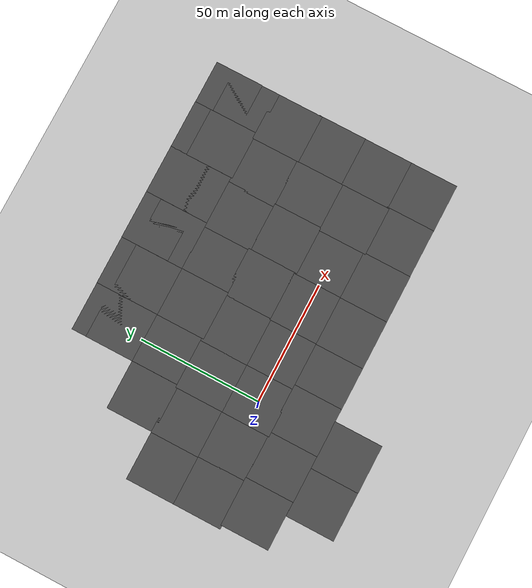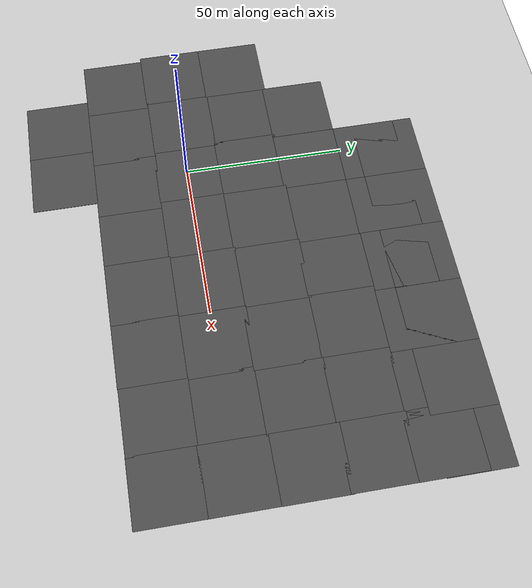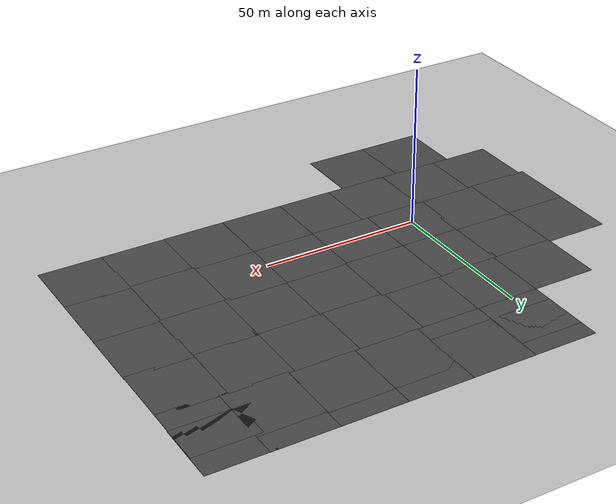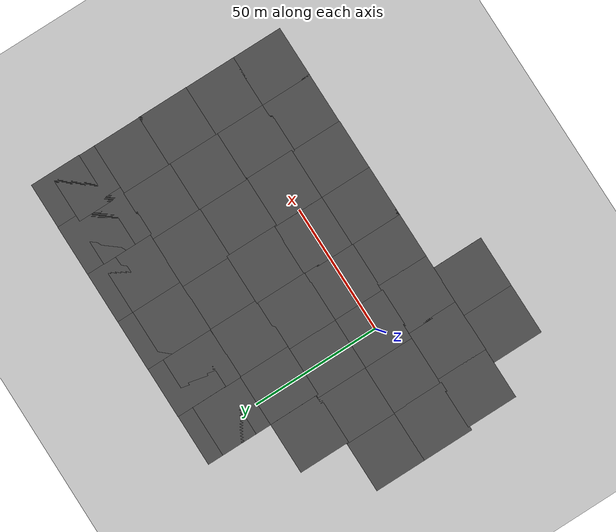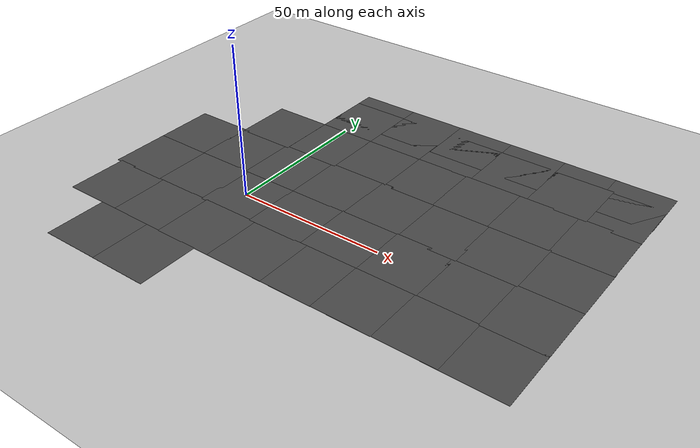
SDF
<sdf version="1.6">
 <world name="default">
  <light name="sun" type="directional">
   <pose>0 0 10 0 -0 0</pose>
   <diffuse>0.8 0.8 0.8 1</diffuse>
   <specular>0.1 0.1 0.1 1</specular>
   <attenuation>
    <range>1000</range>
    <constant>0.9</constant>
    <linear>0.01</linear>
    <quadratic>0.001</quadratic>
   </attenuation>
   <direction>-0.5 0.5 -1</direction>
  </light>
  <model name="ground_plane">
   <static>1</static>
   <link name="link">
    <collision name="collision">
     <geometry><plane><normal>0 0 1</normal><size>100 100</size></plane></geometry>
     <surface><friction><ode><mu>100</mu><mu2>50</mu2></ode></friction></surface>
    </collision>
    <visual name="visual">
     <cast_shadows>0</cast_shadows>
     <geometry><plane><normal>0 0 1</normal><size>100 100</size></plane></geometry>
     <material>
      <script><uri>file://media/materials/scripts/gazebo.material</uri><name>Gazebo/Grey</name></script>
     </material>
    </visual>
   </link>
  </model>
  <gravity>0 0 -9.8</gravity>
  <magnetic_field>6e-06 2.3e-05 -4.2e-05</magnetic_field>
  <atmosphere type="adiabatic"/>
  <physics name="default_physics" default="0" type="ode">
   <max_step_size>0.001</max_step_size>
   <real_time_factor>1</real_time_factor>
   <real_time_update_rate>1000</real_time_update_rate>
  </physics>
  <scene><ambient>0.4 0.4 0.4 1</ambient><background>0.7 0.7 0.7 1</background><shadows>1</shadows></scene>
  <spherical_coordinates>
   <surface_model>EARTH_WGS84</surface_model>
   <latitude_deg>0</latitude_deg>
   <longitude_deg>0</longitude_deg>
   <elevation>0</elevation>
   <heading_deg>0</heading_deg>
  </spherical_coordinates>
  <model name="asphalt_plane_4">
   <static>1</static>
   <link name="link">
    <collision name="collision"><geometry><box><size>20 20 0.1</size></box></geometry></collision>
    <visual name="visual">
     <cast_shadows>0</cast_shadows>
     <geometry><box><size>20 20 0.1</size></box></geometry>
     <material>
      <script>
       <uri>model://asphalt_plane/materials/scripts</uri>
       <uri>model://asphalt_plane/materials/textures</uri>
       <name>vrc/asphalt</name>
      </script>
     </material>
    </visual>
   </link>
   <pose>-38.464 20.3548 0 0 -0 0</pose>
  </model>
  <model name="asphalt_plane_5">
   <static>1</static>
   <link name="link">
    <collision name="collision"><geometry><box><size>20 20 0.1</size></box></geometry></collision>
    <visual name="visual">
     <cast_shadows>0</cast_shadows>
     <geometry><box><size>20 20 0.1</size></box></geometry>
     <material>
      <script>
       <uri>model://asphalt_plane/materials/scripts</uri>
       <uri>model://asphalt_plane/materials/textures</uri>
       <name>vrc/asphalt</name>
      </script>
     </material>
    </visual>
   </link>
   <pose>-18.8729 20.4275 0 0 -0 0</pose>
  </model>
  <model name="asphalt_plane_7">
   <static>1</static>
   <link name="link">
    <collision name="collision"><geometry><box><size>20 20 0.1</size></box></geometry></collision>
    <visual name="visual">
     <cast_shadows>0</cast_shadows>
     <geometry><box><size>20 20 0.1</size></box></geometry>
     <material>
      <script>
       <uri>model://asphalt_plane/materials/scripts</uri>
       <uri>model://asphalt_plane/materials/textures</uri>
       <name>vrc/asphalt</name>
      </script>
     </material>
    </visual>
   </link>
   <pose>20.1778 20.2326 0 0 -0 0</pose>
  </model>
  <model name="asphalt_plane_10">
   <static>1</static>
   <link name="link">
    <collision name="collision"><geometry><box><size>20 20 0.1</size></box></geometry></collision>
    <visual name="visual">
     <cast_shadows>0</cast_shadows>
     <geometry><box><size>20 20 0.1</size></box></geometry>
     <material>
      <script>
       <uri>model://asphalt_plane/materials/scripts</uri>
       <uri>model://asphalt_plane/materials/textures</uri>
       <name>vrc/asphalt</name>
      </script>
     </material>
    </visual>
   </link>
   <pose>19.9973 0.461553 0 0 -0 0</pose>
  </model>
  <model name="asphalt_plane_11">
   <static>1</static>
   <link name="link">
    <collision name="collision"><geometry><box><size>20 20 0.1</size></box></geometry></collision>
    <visual name="visual">
     <cast_shadows>0</cast_shadows>
     <geometry><box><size>20 20 0.1</size></box></geometry>
     <material>
      <script>
       <uri>model://asphalt_plane/materials/scripts</uri>
       <uri>model://asphalt_plane/materials/textures</uri>
       <name>vrc/asphalt</name>
      </script>
     </material>
    </visual>
   </link>
   <pose>0.257294 0.284104 0 0 -0 0</pose>
  </model>
  <model name="asphalt_plane_12">
   <static>1</static>
   <link name="link">
    <collision name="collision"><geometry><box><size>20 20 0.1</size></box></geometry></collision>
    <visual name="visual">
     <cast_shadows>0</cast_shadows>
     <geometry><box><size>20 20 0.1</size></box></geometry>
     <material>
      <script>
       <uri>model://asphalt_plane/materials/scripts</uri>
       <uri>model://asphalt_plane/materials/textures</uri>
       <name>vrc/asphalt</name>
      </script>
     </material>
    </visual>
   </link>
   <pose>-18.6747 0.719295 0 0 -0 0</pose>
  </model>
  <model name="asphalt_plane_13">
   <static>1</static>
   <link name="link">
    <collision name="collision"><geometry><box><size>20 20 0.1</size></box></geometry></collision>
    <visual name="visual">
     <cast_shadows>0</cast_shadows>
     <geometry><box><size>20 20 0.1</size></box></geometry>
     <material>
      <script>
       <uri>model://asphalt_plane/materials/scripts</uri>
       <uri>model://asphalt_plane/materials/textures</uri>
       <name>vrc/asphalt</name>
      </script>
     </material>
    </visual>
   </link>
   <pose>-38.4625 0.435225 0 0 -0 0</pose>
  </model>
  <model name="asphalt_plane_18">
   <static>1</static>
   <link name="link">
    <collision name="collision"><geometry><box><size>20 20 0.1</size></box></geometry></collision>
    <visual name="visual">
     <cast_shadows>0</cast_shadows>
     <geometry><box><size>20 20 0.1</size></box></geometry>
     <material>
      <script>
       <uri>model://asphalt_plane/materials/scripts</uri>
       <uri>model://asphalt_plane/materials/textures</uri>
       <name>vrc/asphalt</name>
      </script>
     </material>
    </visual>
   </link>
   <pose>39.4809 -19.2115 0 0 -0 0</pose>
  </model>
  <model name="asphalt_plane_21">
   <static>1</static>
   <link name="link">
    <collision name="collision"><geometry><box><size>20 20 0.1</size></box></geometry></collision>
    <visual name="visual">
     <cast_shadows>0</cast_shadows>
     <geometry><box><size>20 20 0.1</size></box></geometry>
     <material>
      <script>
       <uri>model://asphalt_plane/materials/scripts</uri>
       <uri>model://asphalt_plane/materials/textures</uri>
       <name>vrc/asphalt</name>
      </script>
     </material>
    </visual>
   </link>
   <pose>2.18116 -19.193 0 0 -0 0</pose>
  </model>
  <model name="asphalt_plane_22">
   <static>1</static>
   <link name="link">
    <collision name="collision"><geometry><box><size>20 20 0.1</size></box></geometry></collision>
    <visual name="visual">
     <cast_shadows>0</cast_shadows>
     <geometry><box><size>20 20 0.1</size></box></geometry>
     <material>
      <script>
       <uri>model://asphalt_plane/materials/scripts</uri>
       <uri>model://asphalt_plane/materials/textures</uri>
       <name>vrc/asphalt</name>
      </script>
     </material>
    </visual>
   </link>
   <pose>22.0547 -19.2194 0 0 -0 0</pose>
  </model>
  <model name="asphalt_plane_9_clone_0">
   <static>1</static>
   <link name="link">
    <collision name="collision"><geometry><box><size>20 20 0.1</size></box></geometry></collision>
    <visual name="visual">
     <cast_shadows>0</cast_shadows>
     <geometry><box><size>20 20 0.1</size></box></geometry>
     <material>
      <script>
       <uri>model://asphalt_plane/materials/scripts</uri>
       <uri>model://asphalt_plane/materials/textures</uri>
       <name>vrc/asphalt</name>
      </script>
     </material>
    </visual>
   </link>
   <pose>1.40042 39.4663 0 0 -0 0</pose>
  </model>
  <model name="asphalt_plane_9_clone_1">
   <static>1</static>
   <link name="link">
    <collision name="collision"><geometry><box><size>20 20 0.1</size></box></geometry></collision>
    <visual name="visual">
     <cast_shadows>0</cast_shadows>
     <geometry><box><size>20 20 0.1</size></box></geometry>
     <material>
      <script>
       <uri>model://asphalt_plane/materials/scripts</uri>
       <uri>model://asphalt_plane/materials/textures</uri>
       <name>vrc/asphalt</name>
      </script>
     </material>
    </visual>
   </link>
   <pose>21.2462 39.3939 0 0 -0 0</pose>
  </model>
  <model name="asphalt_plane_9_clone_2">
   <static>1</static>
   <link name="link">
    <collision name="collision"><geometry><box><size>20 20 0.1</size></box></geometry></collision>
    <visual name="visual">
     <cast_shadows>0</cast_shadows>
     <geometry><box><size>20 20 0.1</size></box></geometry>
     <material>
      <script>
       <uri>model://asphalt_plane/materials/scripts</uri>
       <uri>model://asphalt_plane/materials/textures</uri>
       <name>vrc/asphalt</name>
      </script>
     </material>
    </visual>
   </link>
   <pose>39.4027 39.4817 0 0 -0 0</pose>
  </model>
  <model name="asphalt_plane_16">
   <static>1</static>
   <link name="link">
    <collision name="collision"><geometry><box><size>20 20 0.1</size></box></geometry></collision>
    <visual name="visual">
     <cast_shadows>0</cast_shadows>
     <geometry><box><size>20 20 0.1</size></box></geometry>
     <material>
      <script>
       <uri>model://asphalt_plane/materials/scripts</uri>
       <uri>model://asphalt_plane/materials/textures</uri>
       <name>vrc/asphalt</name>
      </script>
     </material>
    </visual>
   </link>
   <pose>0.295027 20.223 0 0 -0 0</pose>
  </model>
  <model name="robocup_3d_field">
   <static>1</static>
   <link name="field">
    <pose>0 0 0.01 0 -0 0</pose>
    <collision name="collision">
     <geometry><plane><normal>0 0 1</normal><size>30 20</size></plane></geometry>
     <surface><friction><ode><mu>100</mu><mu2>50</mu2></ode></friction></surface>
    </collision>
    <visual name="base1">
     <pose>0 11 0.001 0 -0 0</pose>
     <cast_shadows>0</cast_shadows>
     <geometry><plane><normal>0 0 1</normal><size>34 2</size></plane></geometry>
     <material>
      <script>
       <uri>model://robocup_3Dsim_field/materials/scripts/</uri>
       <uri>model://robocup_3Dsim_field/materials/textures/</uri>
       <name>RoboCup/FieldBorder</name>
      </script>
     </material>
    </visual>
    <visual name="base2">
     <pose>0 -11 0.001 0 -0 0</pose>
     <cast_shadows>0</cast_shadows>
     <geometry><plane><normal>0 0 1</normal><size>34 2</size></plane></geometry>
     <material>
      <script>
       <uri>model://robocup_3Dsim_field/materials/scripts/</uri>
       <uri>model://robocup_3Dsim_field/materials/textures/</uri>
       <name>RoboCup/FieldBorder</name>
      </script>
     </material>
    </visual>
    <visual name="base3">
     <pose>16 0 0.001 0 -0 0</pose>
     <cast_shadows>0</cast_shadows>
     <geometry><plane><normal>0 0 1</normal><size>2 20</size></plane></geometry>
     <material>
      <script>
       <uri>model://robocup_3Dsim_field/materials/scripts/</uri>
       <uri>model://robocup_3Dsim_field/materials/textures/</uri>
       <name>RoboCup/FieldBorder</name>
      </script>
     </material>
    </visual>
    <visual name="base4">
     <pose>-16 0 0.001 0 -0 0</pose>
     <cast_shadows>0</cast_shadows>
     <geometry><plane><normal>0 0 1</normal><size>2 20</size></plane></geometry>
     <material>
      <script>
       <uri>model://robocup_3Dsim_field/materials/scripts/</uri>
       <uri>model://robocup_3Dsim_field/materials/textures/</uri>
       <name>RoboCup/FieldBorder</name>
      </script>
     </material>
    </visual>
    <visual name="carpet">
     <cast_shadows>0</cast_shadows>
     <geometry><plane><normal>0 0 1</normal><size>30 20</size></plane></geometry>
     <material>
      <script>
       <uri>model://robocup_3Dsim_field/materials/scripts/</uri>
       <uri>model://robocup_3Dsim_field/materials/textures/</uri>
       <name>RoboCup/Grass</name>
      </script>
     </material>
    </visual>
   </link>
   <pose>-12.9171 -26.9667 0 0 -0 0</pose>
  </model>
  <model name="asphalt_plane">
   <static>1</static>
   <link name="link">
    <collision name="collision"><geometry><box><size>20 20 0.1</size></box></geometry></collision>
    <visual name="visual">
     <cast_shadows>0</cast_shadows>
     <geometry><box><size>20 20 0.1</size></box></geometry>
     <material>
      <script>
       <uri>model://asphalt_plane/materials/scripts</uri>
       <uri>model://asphalt_plane/materials/textures</uri>
       <name>vrc/asphalt</name>
      </script>
     </material>
    </visual>
   </link>
   <pose>59.0885 -19.1837 0 0 -0 0</pose>
  </model>
  <model name="asphalt_plane_0">
   <static>1</static>
   <link name="link">
    <collision name="collision"><geometry><box><size>20 20 0.1</size></box></geometry></collision>
    <visual name="visual">
     <cast_shadows>0</cast_shadows>
     <geometry><box><size>20 20 0.1</size></box></geometry>
     <material>
      <script>
       <uri>model://asphalt_plane/materials/scripts</uri>
       <uri>model://asphalt_plane/materials/textures</uri>
       <name>vrc/asphalt</name>
      </script>
     </material>
    </visual>
   </link>
   <pose>59.4827 0.805416 0 0 -0 0</pose>
  </model>
  <model name="asphalt_plane_1_clone">
   <static>1</static>
   <link name="link">
    <collision name="collision"><geometry><box><size>20 20 0.1</size></box></geometry></collision>
    <visual name="visual">
     <cast_shadows>0</cast_shadows>
     <geometry><box><size>20 20 0.1</size></box></geometry>
     <material>
      <script>
       <uri>model://asphalt_plane/materials/scripts</uri>
       <uri>model://asphalt_plane/materials/textures</uri>
       <name>vrc/asphalt</name>
      </script>
     </material>
    </visual>
   </link>
   <pose>59.2699 39.4913 0 0 -0 0</pose>
  </model>
  <model name="asphalt_plane_1_clone_0">
   <static>1</static>
   <link name="link">
    <collision name="collision"><geometry><box><size>20 20 0.1</size></box></geometry></collision>
    <visual name="visual">
     <cast_shadows>0</cast_shadows>
     <geometry><box><size>20 20 0.1</size></box></geometry>
     <material>
      <script>
       <uri>model://asphalt_plane/materials/scripts</uri>
       <uri>model://asphalt_plane/materials/textures</uri>
       <name>vrc/asphalt</name>
      </script>
     </material>
    </visual>
   </link>
   <pose>78.9828 -19.0719 0 0 -0 0</pose>
  </model>
  <model name="asphalt_plane_1_clone_1">
   <static>1</static>
   <link name="link">
    <collision name="collision"><geometry><box><size>20 20 0.1</size></box></geometry></collision>
    <visual name="visual">
     <cast_shadows>0</cast_shadows>
     <geometry><box><size>20 20 0.1</size></box></geometry>
     <material>
      <script>
       <uri>model://asphalt_plane/materials/scripts</uri>
       <uri>model://asphalt_plane/materials/textures</uri>
       <name>vrc/asphalt</name>
      </script>
     </material>
    </visual>
   </link>
   <pose>78.6272 -0.085437 0 0 -0 0</pose>
  </model>
  <model name="asphalt_plane_1_clone_2">
   <static>1</static>
   <link name="link">
    <collision name="collision"><geometry><box><size>20 20 0.1</size></box></geometry></collision>
    <visual name="visual">
     <cast_shadows>0</cast_shadows>
     <geometry><box><size>20 20 0.1</size></box></geometry>
     <material>
      <script>
       <uri>model://asphalt_plane/materials/scripts</uri>
       <uri>model://asphalt_plane/materials/textures</uri>
       <name>vrc/asphalt</name>
      </script>
     </material>
    </visual>
   </link>
   <pose>79.2067 19.8861 0 0 -0 0</pose>
  </model>
  <model name="asphalt_plane_1_clone_3">
   <static>1</static>
   <link name="link">
    <collision name="collision"><geometry><box><size>20 20 0.1</size></box></geometry></collision>
    <visual name="visual">
     <cast_shadows>0</cast_shadows>
     <geometry><box><size>20 20 0.1</size></box></geometry>
     <material>
      <script>
       <uri>model://asphalt_plane/materials/scripts</uri>
       <uri>model://asphalt_plane/materials/textures</uri>
       <name>vrc/asphalt</name>
      </script>
     </material>
    </visual>
   </link>
   <pose>78.5776 39.4728 0 0 -0 0</pose>
  </model>
  <model name="asphalt_plane_1_clone_6">
   <static>1</static>
   <link name="link">
    <collision name="collision"><geometry><box><size>20 20 0.1</size></box></geometry></collision>
    <visual name="visual">
     <cast_shadows>0</cast_shadows>
     <geometry><box><size>20 20 0.1</size></box></geometry>
     <material>
      <script>
       <uri>model://asphalt_plane/materials/scripts</uri>
       <uri>model://asphalt_plane/materials/textures</uri>
       <name>vrc/asphalt</name>
      </script>
     </material>
    </visual>
   </link>
   <pose>98.6369 20.4109 0 0 -0 0</pose>
  </model>
  <model name="asphalt_plane_1_clone_7">
   <static>1</static>
   <link name="link">
    <collision name="collision"><geometry><box><size>20 20 0.1</size></box></geometry></collision>
    <visual name="visual">
     <cast_shadows>0</cast_shadows>
     <geometry><box><size>20 20 0.1</size></box></geometry>
     <material>
      <script>
       <uri>model://asphalt_plane/materials/scripts</uri>
       <uri>model://asphalt_plane/materials/textures</uri>
       <name>vrc/asphalt</name>
      </script>
     </material>
    </visual>
   </link>
   <pose>98.5191 39.2592 0 0 -0 0</pose>
  </model>
  <model name="asphalt_plane_1_clone_0_clone">
   <static>1</static>
   <link name="link">
    <collision name="collision"><geometry><box><size>20 20 0.1</size></box></geometry></collision>
    <visual name="visual">
     <cast_shadows>0</cast_shadows>
     <geometry><box><size>20 20 0.1</size></box></geometry>
     <material>
      <script>
       <uri>model://asphalt_plane/materials/scripts</uri>
       <uri>model://asphalt_plane/materials/textures</uri>
       <name>vrc/asphalt</name>
      </script>
     </material>
    </visual>
   </link>
   <pose>98.5869 0.50756 0 0 -0 0</pose>
  </model>
  <model name="asphalt_plane_1_clone_0_clone_0">
   <static>1</static>
   <link name="link">
    <collision name="collision"><geometry><box><size>20 20 0.1</size></box></geometry></collision>
    <visual name="visual">
     <cast_shadows>0</cast_shadows>
     <geometry><box><size>20 20 0.1</size></box></geometry>
     <material>
      <script>
       <uri>model://asphalt_plane/materials/scripts</uri>
       <uri>model://asphalt_plane/materials/textures</uri>
       <name>vrc/asphalt</name>
      </script>
     </material>
    </visual>
   </link>
   <pose>98.5643 -19.108 0 0 -0 0</pose>
  </model>
  <model name="asphalt_plane_9_clone_1_clone">
   <static>1</static>
   <link name="link">
    <collision name="collision"><geometry><box><size>20 20 0.1</size></box></geometry></collision>
    <visual name="visual">
     <cast_shadows>0</cast_shadows>
     <geometry><box><size>20 20 0.1</size></box></geometry>
     <material>
      <script>
       <uri>model://asphalt_plane/materials/scripts</uri>
       <uri>model://asphalt_plane/materials/textures</uri>
       <name>vrc/asphalt</name>
      </script>
     </material>
    </visual>
   </link>
   <pose>21.1623 59.2293 0 0 -0 0</pose>
  </model>
  <model name="asphalt_plane_9_clone_0_clone">
   <static>1</static>
   <link name="link">
    <collision name="collision"><geometry><box><size>20 20 0.1</size></box></geometry></collision>
    <visual name="visual">
     <cast_shadows>0</cast_shadows>
     <geometry><box><size>20 20 0.1</size></box></geometry>
     <material>
      <script>
       <uri>model://asphalt_plane/materials/scripts</uri>
       <uri>model://asphalt_plane/materials/textures</uri>
       <name>vrc/asphalt</name>
      </script>
     </material>
    </visual>
   </link>
   <pose>1.31106 59.4417 0 0 -0 0</pose>
  </model>
  <model name="asphalt_plane_9_clone_2_clone">
   <static>1</static>
   <link name="link">
    <collision name="collision"><geometry><box><size>20 20 0.1</size></box></geometry></collision>
    <visual name="visual">
     <cast_shadows>0</cast_shadows>
     <geometry><box><size>20 20 0.1</size></box></geometry>
     <material>
      <script>
       <uri>model://asphalt_plane/materials/scripts</uri>
       <uri>model://asphalt_plane/materials/textures</uri>
       <name>vrc/asphalt</name>
      </script>
     </material>
    </visual>
   </link>
   <pose>41.119 59.257 0 0 -0 0</pose>
  </model>
  <model name="asphalt_plane_9_clone_2_clone_0">
   <static>1</static>
   <link name="link">
    <collision name="collision"><geometry><box><size>20 20 0.1</size></box></geometry></collision>
    <visual name="visual">
     <cast_shadows>0</cast_shadows>
     <geometry><box><size>20 20 0.1</size></box></geometry>
     <material>
      <script>
       <uri>model://asphalt_plane/materials/scripts</uri>
       <uri>model://asphalt_plane/materials/textures</uri>
       <name>vrc/asphalt</name>
      </script>
     </material>
    </visual>
   </link>
   <pose>60.9958 59.3379 0 0 -0 0</pose>
  </model>
  <model name="asphalt_plane_9_clone_0_clone_clone">
   <static>1</static>
   <link name="link">
    <collision name="collision"><geometry><box><size>20 20 0.1</size></box></geometry></collision>
    <visual name="visual">
     <cast_shadows>0</cast_shadows>
     <geometry><box><size>20 20 0.1</size></box></geometry>
     <material>
      <script>
       <uri>model://asphalt_plane/materials/scripts</uri>
       <uri>model://asphalt_plane/materials/textures</uri>
       <name>vrc/asphalt</name>
      </script>
     </material>
    </visual>
   </link>
   <pose>-18.6124 39.4738 0 0 -0 0</pose>
  </model>
  <model name="asphalt_plane_1_clone_3_clone">
   <static>1</static>
   <link name="link">
    <collision name="collision"><geometry><box><size>20 20 0.1</size></box></geometry></collision>
    <visual name="visual">
     <cast_shadows>0</cast_shadows>
     <geometry><box><size>20 20 0.1</size></box></geometry>
     <material>
      <script>
       <uri>model://asphalt_plane/materials/scripts</uri>
       <uri>model://asphalt_plane/materials/textures</uri>
       <name>vrc/asphalt</name>
      </script>
     </material>
    </visual>
   </link>
   <pose>80.9996 58.8303 0 0 -0 0</pose>
  </model>
  <model name="asphalt_plane_1_clone_3_clone_clone">
   <static>1</static>
   <link name="link">
    <collision name="collision"><geometry><box><size>20 20 0.1</size></box></geometry></collision>
    <visual name="visual">
     <cast_shadows>0</cast_shadows>
     <geometry><box><size>20 20 0.1</size></box></geometry>
     <material>
      <script>
       <uri>model://asphalt_plane/materials/scripts</uri>
       <uri>model://asphalt_plane/materials/textures</uri>
       <name>vrc/asphalt</name>
      </script>
     </material>
    </visual>
   </link>
   <pose>80.9923 65.6484 0 0 -0 0</pose>
  </model>
  <model name="asphalt_plane_1_clone_3_clone_clone_0">
   <static>1</static>
   <link name="link">
    <collision name="collision"><geometry><box><size>20 20 0.1</size></box></geometry></collision>
    <visual name="visual">
     <cast_shadows>0</cast_shadows>
     <geometry><box><size>20 20 0.1</size></box></geometry>
     <material>
      <script>
       <uri>model://asphalt_plane/materials/scripts</uri>
       <uri>model://asphalt_plane/materials/textures</uri>
       <name>vrc/asphalt</name>
      </script>
     </material>
    </visual>
   </link>
   <pose>61.1386 65.6383 0 0 -0 0</pose>
  </model>
  <model name="asphalt_plane_1_clone_3_clone_clone_1">
   <static>1</static>
   <link name="link">
    <collision name="collision"><geometry><box><size>20 20 0.1</size></box></geometry></collision>
    <visual name="visual">
     <cast_shadows>0</cast_shadows>
     <geometry><box><size>20 20 0.1</size></box></geometry>
     <material>
      <script>
       <uri>model://asphalt_plane/materials/scripts</uri>
       <uri>model://asphalt_plane/materials/textures</uri>
       <name>vrc/asphalt</name>
      </script>
     </material>
    </visual>
   </link>
   <pose>41.1759 65.6116 0 0 -0 0</pose>
  </model>
  <model name="asphalt_plane_1_clone_3_clone_clone_2">
   <static>1</static>
   <link name="link">
    <collision name="collision"><geometry><box><size>20 20 0.1</size></box></geometry></collision>
    <visual name="visual">
     <cast_shadows>0</cast_shadows>
     <geometry><box><size>20 20 0.1</size></box></geometry>
     <material>
      <script>
       <uri>model://asphalt_plane/materials/scripts</uri>
       <uri>model://asphalt_plane/materials/textures</uri>
       <name>vrc/asphalt</name>
      </script>
     </material>
    </visual>
   </link>
   <pose>21.3233 65.5604 0 0 -0 0</pose>
  </model>
  <model name="asphalt_plane_1_clone_3_clone_clone_3">
   <static>1</static>
   <link name="link">
    <collision name="collision"><geometry><box><size>20 20 0.1</size></box></geometry></collision>
    <visual name="visual">
     <cast_shadows>0</cast_shadows>
     <geometry><box><size>20 20 0.1</size></box></geometry>
     <material>
      <script>
       <uri>model://asphalt_plane/materials/scripts</uri>
       <uri>model://asphalt_plane/materials/textures</uri>
       <name>vrc/asphalt</name>
      </script>
     </material>
    </visual>
   </link>
   <pose>1.32058 65.5057 0 0 -0 0</pose>
  </model>
  <model name="asphalt_plane_1_clone_7_clone">
   <static>1</static>
   <link name="link">
    <collision name="collision"><geometry><box><size>20 20 0.1</size></box></geometry></collision>
    <visual name="visual">
     <cast_shadows>0</cast_shadows>
     <geometry><box><size>20 20 0.1</size></box></geometry>
     <material>
      <script>
       <uri>model://asphalt_plane/materials/scripts</uri>
       <uri>model://asphalt_plane/materials/textures</uri>
       <name>vrc/asphalt</name>
      </script>
     </material>
    </visual>
   </link>
   <pose>98.5473 57.94 0 0 -0 0</pose>
  </model>
  <model name="asphalt_plane_1_clone_7_clone_0">
   <static>1</static>
   <link name="link">
    <collision name="collision"><geometry><box><size>20 20 0.1</size></box></geometry></collision>
    <visual name="visual">
     <cast_shadows>0</cast_shadows>
     <geometry><box><size>20 20 0.1</size></box></geometry>
     <material>
      <script>
       <uri>model://asphalt_plane/materials/scripts</uri>
       <uri>model://asphalt_plane/materials/textures</uri>
       <name>vrc/asphalt</name>
      </script>
     </material>
    </visual>
   </link>
   <pose>98.7025 65.5774 0 0 -0 0</pose>
  </model>
  <model name="asphalt_plane_15_clone">
   <static>1</static>
   <link name="link">
    <collision name="collision"><geometry><box><size>20 20 0.1</size></box></geometry></collision>
    <visual name="visual">
     <cast_shadows>0</cast_shadows>
     <geometry><box><size>20 20 0.1</size></box></geometry>
     <material>
      <script>
       <uri>model://asphalt_plane/materials/scripts</uri>
       <uri>model://asphalt_plane/materials/textures</uri>
       <name>vrc/asphalt</name>
      </script>
     </material>
    </visual>
   </link>
   <pose>-22.6751 -39.0247 0 0 -0 0</pose>
  </model>
  <model name="asphalt_plane_15_clone_0">
   <static>1</static>
   <link name="link">
    <collision name="collision"><geometry><box><size>20 20 0.1</size></box></geometry></collision>
    <visual name="visual">
     <cast_shadows>0</cast_shadows>
     <geometry><box><size>20 20 0.1</size></box></geometry>
     <material>
      <script>
       <uri>model://asphalt_plane/materials/scripts</uri>
       <uri>model://asphalt_plane/materials/textures</uri>
       <name>vrc/asphalt</name>
      </script>
     </material>
    </visual>
   </link>
   <pose>-2.93917 -39.05 0 0 -0 0</pose>
  </model>
  <model name="asphalt_plane_15_clone_1">
   <static>1</static>
   <link name="link">
    <collision name="collision"><geometry><box><size>20 20 0.1</size></box></geometry></collision>
    <visual name="visual">
     <cast_shadows>0</cast_shadows>
     <geometry><box><size>20 20 0.1</size></box></geometry>
     <material>
      <script>
       <uri>model://asphalt_plane/materials/scripts</uri>
       <uri>model://asphalt_plane/materials/textures</uri>
       <name>vrc/asphalt</name>
      </script>
     </material>
    </visual>
   </link>
   <pose>-37 -19 0 0 -0 0</pose>
  </model>
  <model name="asphalt_plane_15_clone_1_clone">
   <static>1</static>
   <link name="link">
    <collision name="collision"><geometry><box><size>20 20 0.1</size></box></geometry></collision>
    <visual name="visual">
     <cast_shadows>0</cast_shadows>
     <geometry><box><size>20 20 0.1</size></box></geometry>
     <material>
      <script>
       <uri>model://asphalt_plane/materials/scripts</uri>
       <uri>model://asphalt_plane/materials/textures</uri>
       <name>vrc/asphalt</name>
      </script>
     </material>
    </visual>
   </link>
   <pose>-17.1897 -19.128 0 0 -0 0</pose>
  </model>
  <model name="asphalt_plane_1_clone_4">
   <static>1</static>
   <link name="link">
    <collision name="collision"><geometry><box><size>20 20 0.1</size></box></geometry></collision>
    <visual name="visual">
     <cast_shadows>0</cast_shadows>
     <geometry><box><size>20 20 0.1</size></box></geometry>
     <material>
      <script>
       <uri>model://asphalt_plane/materials/scripts</uri>
       <uri>model://asphalt_plane/materials/textures</uri>
       <name>vrc/asphalt</name>
      </script>
     </material>
    </visual>
   </link>
   <pose>39.5825 0.778572 0 0 -0 0</pose>
  </model>
  <model name="asphalt_plane_1_clone_5">
   <static>1</static>
   <link name="link">
    <collision name="collision"><geometry><box><size>20 20 0.1</size></box></geometry></collision>
    <visual name="visual">
     <cast_shadows>0</cast_shadows>
     <geometry><box><size>20 20 0.1</size></box></geometry>
     <material>
      <script>
       <uri>model://asphalt_plane/materials/scripts</uri>
       <uri>model://asphalt_plane/materials/textures</uri>
       <name>vrc/asphalt</name>
      </script>
     </material>
    </visual>
   </link>
   <pose>40 20.5478 0 0 -0 0</pose>
  </model>
  <model name="asphalt_plane_0_clone">
   <static>1</static>
   <link name="link">
    <collision name="collision"><geometry><box><size>20 20 0.1</size></box></geometry></collision>
    <visual name="visual">
     <cast_shadows>0</cast_shadows>
     <geometry><box><size>20 20 0.1</size></box></geometry>
     <material>
      <script>
       <uri>model://asphalt_plane/materials/scripts</uri>
       <uri>model://asphalt_plane/materials/textures</uri>
       <name>vrc/asphalt</name>
      </script>
     </material>
    </visual>
   </link>
   <pose>59.9212 19.6577 0 0 -0 0</pose>
  </model>
 </world>
</sdf>
